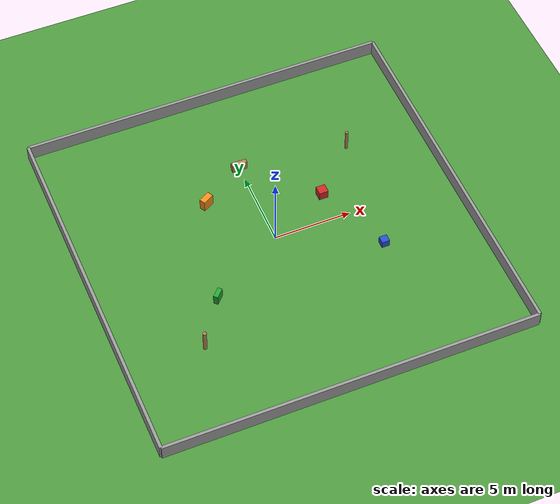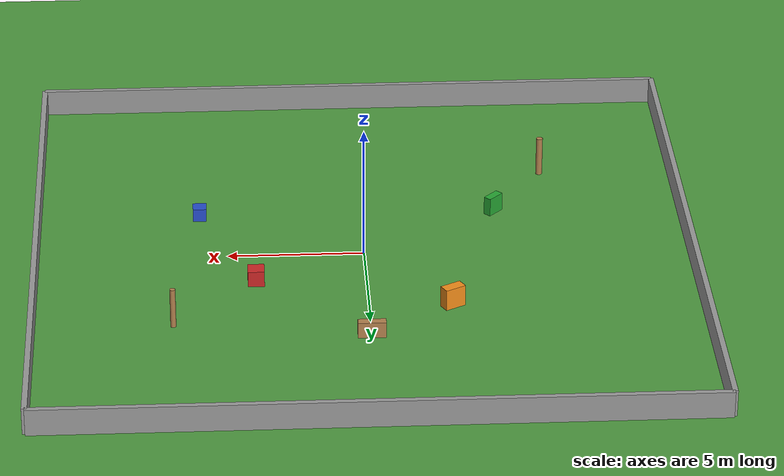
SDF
<?xml version="1.0"?>
<sdf version="1.6">
  <world name="outdoor">

    <!-- Fisica -->
    <physics name="default" type="ode">
      <max_step_size>0.004</max_step_size>
      <real_time_factor>1.0</real_time_factor>
      <ode>
        <solver>
          <type>quick</type>
          <iters>150</iters>
          <sor>1.4</sor>
        </solver>
      </ode>
    </physics>

    <!-- Luz solar -->
    <light name="sun" type="directional">
      <cast_shadows>true</cast_shadows>
      <pose>0 0 100 0 -0.3 0.8</pose>
      <diffuse>0.9 0.85 0.75 1</diffuse>
      <specular>0.3 0.3 0.3 1</specular>
      <direction>-0.5 0.2 -0.9</direction>
      <attenuation>
        <range>1000</range>
        <constant>0.9</constant>
        <linear>0.01</linear>
        <quadratic>0.001</quadratic>
      </attenuation>
    </light>

    <!-- Luz ambiental -->
    <light name="ambient_light" type="point">
      <pose>0 0 20 0 0 0</pose>
      <diffuse>0.5 0.5 0.5 1</diffuse>
      <specular>0.1 0.1 0.1 1</specular>
      <attenuation>
        <range>1000</range>
        <constant>0.5</constant>
      </attenuation>
    </light>

    <!-- Suelo (terreno de tierra/cesped) -->
    <model name="ground_plane">
      <static>true</static>
      <link name="link">
        <collision name="collision">
          <geometry>
            <plane>
              <normal>0 0 1</normal>
              <size>50 50</size>
            </plane>
          </geometry>
          <surface>
            <friction>
              <ode>
                <mu>0.9</mu>
                <mu2>0.9</mu2>
              </ode>
            </friction>
          </surface>
        </collision>
        <visual name="visual">
          <geometry>
            <plane>
              <normal>0 0 1</normal>
              <size>50 50</size>
            </plane>
          </geometry>
          <material>
            <script>
              <uri>file://media/materials/scripts/gazebo.material</uri>
              <name>Gazebo/Grass</name>
            </script>
          </material>
        </visual>
      </link>
    </model>

    <!-- Perimetro: 4 muros bajos -->
    <model name="wall_north">
      <static>true</static>
      <pose>12 0 0.5 0 0 0</pose>
      <link name="link">
        <collision name="c"><geometry><box><size>0.2 24 1.0</size></box></geometry></collision>
        <visual name="v">
          <geometry><box><size>0.2 24 1.0</size></box></geometry>
          <material><script><name>Gazebo/Grey</name></script></material>
        </visual>
      </link>
    </model>

    <model name="wall_south">
      <static>true</static>
      <pose>-12 0 0.5 0 0 0</pose>
      <link name="link">
        <collision name="c"><geometry><box><size>0.2 24 1.0</size></box></geometry></collision>
        <visual name="v">
          <geometry><box><size>0.2 24 1.0</size></box></geometry>
          <material><script><name>Gazebo/Grey</name></script></material>
        </visual>
      </link>
    </model>

    <model name="wall_east">
      <static>true</static>
      <pose>0 12 0.5 0 0 0</pose>
      <link name="link">
        <collision name="c"><geometry><box><size>24 0.2 1.0</size></box></geometry></collision>
        <visual name="v">
          <geometry><box><size>24 0.2 1.0</size></box></geometry>
          <material><script><name>Gazebo/Grey</name></script></material>
        </visual>
      </link>
    </model>

    <model name="wall_west">
      <static>true</static>
      <pose>0 -12 0.5 0 0 0</pose>
      <link name="link">
        <collision name="c"><geometry><box><size>24 0.2 1.0</size></box></geometry></collision>
        <visual name="v">
          <geometry><box><size>24 0.2 1.0</size></box></geometry>
          <material><script><name>Gazebo/Grey</name></script></material>
        </visual>
      </link>
    </model>

    <!-- Obstaculos distribuidos en el campo -->
    <model name="box_1">
      <static>true</static>
      <pose>4 2 0.3 0 0 0</pose>
      <link name="link">
        <collision name="c"><geometry><box><size>0.6 0.6 0.6</size></box></geometry></collision>
        <visual name="v">
          <geometry><box><size>0.6 0.6 0.6</size></box></geometry>
          <material><script><name>Gazebo/Red</name></script></material>
        </visual>
      </link>
    </model>

    <model name="box_2">
      <static>true</static>
      <pose>-3 4 0.4 0 0 0.5</pose>
      <link name="link">
        <collision name="c"><geometry><box><size>0.8 0.4 0.8</size></box></geometry></collision>
        <visual name="v">
          <geometry><box><size>0.8 0.4 0.8</size></box></geometry>
          <material><script><name>Gazebo/Orange</name></script></material>
        </visual>
      </link>
    </model>

    <model name="box_3">
      <static>true</static>
      <pose>6 -3 0.25 0 0 0</pose>
      <link name="link">
        <collision name="c"><geometry><box><size>0.5 0.5 0.5</size></box></geometry></collision>
        <visual name="v">
          <geometry><box><size>0.5 0.5 0.5</size></box></geometry>
          <material><script><name>Gazebo/Blue</name></script></material>
        </visual>
      </link>
    </model>

    <model name="box_4">
      <static>true</static>
      <pose>-5 -3 0.35 0 0 0.8</pose>
      <link name="link">
        <collision name="c"><geometry><box><size>0.7 0.3 0.7</size></box></geometry></collision>
        <visual name="v">
          <geometry><box><size>0.7 0.3 0.7</size></box></geometry>
          <material><script><name>Gazebo/Green</name></script></material>
        </visual>
      </link>
    </model>

    <model name="box_5">
      <static>true</static>
      <pose>0 6 0.3 0 0 0</pose>
      <link name="link">
        <collision name="c"><geometry><box><size>1.0 0.3 0.6</size></box></geometry></collision>
        <visual name="v">
          <geometry><box><size>1.0 0.3 0.6</size></box></geometry>
          <material><script><name>Gazebo/WoodPallet</name></script></material>
        </visual>
      </link>
    </model>

    <!-- Cilindros (arboles / postes) -->
    <model name="pole_1">
      <static>true</static>
      <pose>7 5 0.75 0 0 0</pose>
      <link name="link">
        <collision name="c"><geometry><cylinder><radius>0.1</radius><length>1.5</length></cylinder></geometry></collision>
        <visual name="v">
          <geometry><cylinder><radius>0.1</radius><length>1.5</length></cylinder></geometry>
          <material><script><name>Gazebo/Wood</name></script></material>
        </visual>
      </link>
    </model>

    <model name="pole_2">
      <static>true</static>
      <pose>-7 -6 0.75 0 0 0</pose>
      <link name="link">
        <collision name="c"><geometry><cylinder><radius>0.12</radius><length>1.5</length></cylinder></geometry></collision>
        <visual name="v">
          <geometry><cylinder><radius>0.12</radius><length>1.5</length></cylinder></geometry>
          <material><script><name>Gazebo/Wood</name></script></material>
        </visual>
      </link>
    </model>

    <!-- Referencia GPS del mundo (lat/lon de Buenos Aires aprox.) -->
    <spherical_coordinates>
      <surface_model>EARTH_WGS84</surface_model>
      <latitude_deg>-34.603722</latitude_deg>
      <longitude_deg>-58.381592</longitude_deg>
      <elevation>25.0</elevation>
      <heading_deg>0</heading_deg>
    </spherical_coordinates>

    <!-- GUI camara inicial -->
    <gui fullscreen="0">
      <camera name="user_camera">
        <pose>-8 -8 8 0 0.7 0.8</pose>
        <view_controller>orbit</view_controller>
      </camera>
    </gui>

  </world>
</sdf>
